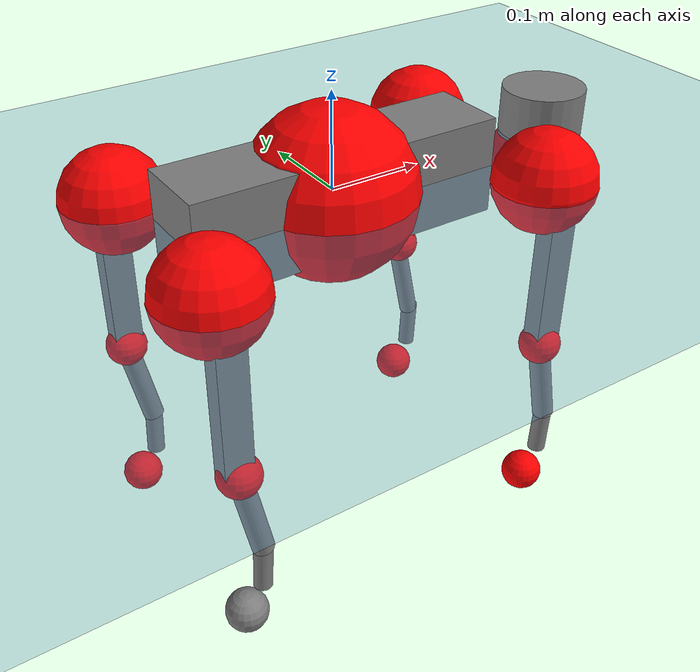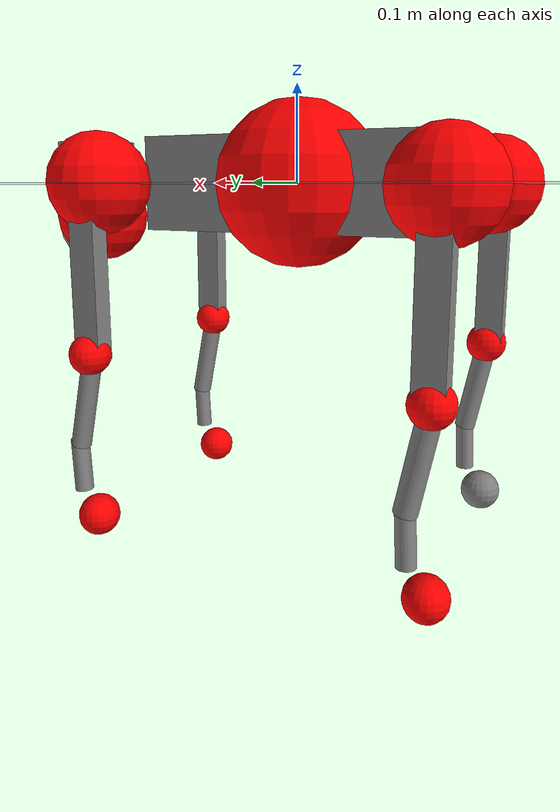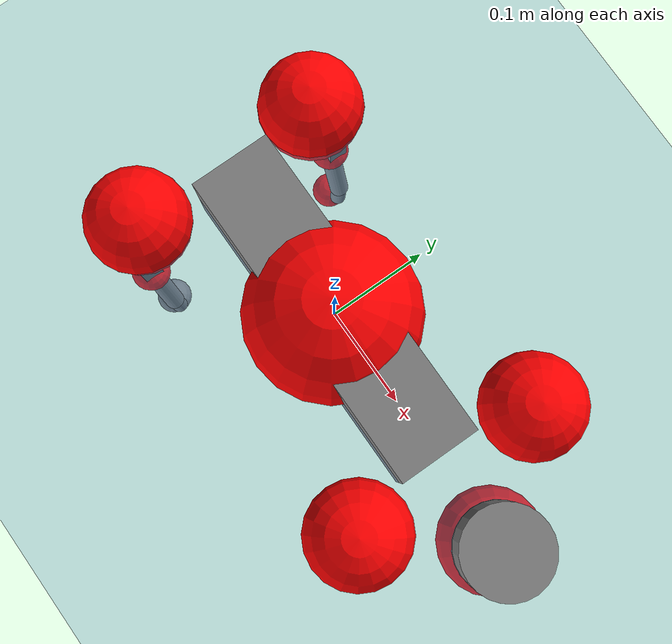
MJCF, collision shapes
<mujoco model="go2">
  <compiler angle="radian" assetdir="assets" balanceinertia="true" inertiafromgeom="false"/>

  <option timestep="0.005" density="1.2" viscosity="2e-05"/>

  <size nkey="1"/>

  <visual>
    <quality shadowsize="8192"/>
    <map shadowclip="0.5"/>
  </visual>

  <default>
    <default class="/">
      <geom contype="0" conaffinity="0" group="1" solref="-1000 -80"/>
      <site size="0.01 0.005 0.005" group="5"/>
      <general forcelimited="true" biastype="affine" gainprm="20" biasprm="0 -20 -0.5"/>
      <default class="go2">
        <joint armature="0.01" damping="0.01" frictionloss="0.2"/>
        <geom condim="1" margin="0.001"/>
        <default class="visual">
          <geom type="mesh" group="2"/>
        </default>
        <default class="collision">
          <geom group="3"/>
          <default class="foot">
            <geom size="0.022 0 0" condim="6" priority="1" friction="0.8 0.02 0.01" solimp="0.015 1 0.022"/>
          </default>
        </default>
        <default class="reward_collision_sphere">
          <geom group="5" rgba="1 0 0 1"/>
        </default>
      </default>
    </default>
  </default>

  <asset>
    <texture type="skybox" colorspace="auto" name="//unnamed_texture_0" builtin="gradient" rgb1="0.95 0.95 0.95" rgb2="0.95 0.95 0.95" width="100" height="600"/>
    <texture type="2d" colorspace="auto" name="texplane" builtin="checker" rgb1="0.345 0.575 0.748" rgb2="0.345 0.575 0.748" markrgb="1 1 1" width="512" height="512"/>
    <material name="MatPlane" class="/" texture="texplane" texuniform="true" texrepeat="2 2" specular="0.9"/>
    <material name="metal" class="/" rgba="0.9 0.95 0.95 1"/>
    <material name="black" class="/" rgba="0 0 0 1"/>
    <material name="white" class="/"/>
    <material name="gray" class="/" rgba="0.671705 0.692426 0.77427 1"/>
    <mesh name="base_0" class="/" file="base_0.obj"/>
    <mesh name="base_1" class="/" file="base_1.obj"/>
    <mesh name="base_2" class="/" file="base_2.obj"/>
    <mesh name="base_3" class="/" file="base_3.obj"/>
    <mesh name="base_4" class="/" file="base_4.obj"/>
    <mesh name="hip_0" class="/" file="hip_0.obj"/>
    <mesh name="hip_1" class="/" file="hip_1.obj"/>
    <mesh name="thigh_0" class="/" file="thigh_0.obj"/>
    <mesh name="thigh_1" class="/" file="thigh_1.obj"/>
    <mesh name="thigh_mirror_0" class="/" file="thigh_mirror_0.obj"/>
    <mesh name="thigh_mirror_1" class="/" file="thigh_mirror_1.obj"/>
    <mesh name="calf_0" class="/" file="calf_0.obj"/>
    <mesh name="calf_1" class="/" file="calf_1.obj"/>
    <mesh name="calf_mirror_0" class="/" file="calf_mirror_0.obj"/>
    <mesh name="calf_mirror_1" class="/" file="calf_mirror_1.obj"/>
    <mesh name="foot" class="/" file="foot.obj"/>
  </asset>

  <worldbody>
    <geom name="floor" class="/" size="100 100 0.125" type="plane" group="0" material="MatPlane"/>
    <light name="toplight_shadow" class="/" pos="0 0 5" dir="0.0990148 0.0990148 -0.990148" type="directional" ambient="0.04 0.04 0.04" diffuse="0.55 0.55 0.55" specular="0.12 0.12 0.12"/>
    <light name="toplight_fill" class="/" pos="0 0 5" dir="0.0990148 0.0990148 -0.990148" type="directional" castshadow="false" ambient="0.04 0.04 0.04" diffuse="0.3 0.3 0.3" specular="0.08 0.08 0.08"/>
    <body name="trunk" childclass="go2" pos="-0.0019892 -0.000693392 -0.000629677" quat="1 0.000563246 -0.000349019 -0.000373138">
      <inertial pos="0.0188603 0.000588452 -0.00432905" quat="0.00710201 0.707292 -0.00563184 0.706863" mass="4.66233" diaginertia="0.0777227 0.0475382 0.0103031"/>
      <joint name="//unnamed_joint_0" type="free" armature="0" damping="0" frictionloss="0"/>
      <geom name="//unnamed_geom_1" class="visual" material="black" mesh="base_0"/>
      <geom name="//unnamed_geom_2" class="visual" material="black" mesh="base_1"/>
      <geom name="//unnamed_geom_3" class="visual" material="black" mesh="base_2"/>
      <geom name="//unnamed_geom_4" class="visual" material="white" mesh="base_3"/>
      <geom name="//unnamed_geom_5" class="visual" material="gray" mesh="base_4"/>
      <geom name="trunk_1" class="collision" size="0.165409 0.0411103 0.0501238" type="box"/>
      <geom name="trunk_2" class="collision" size="0.0439683 0.0395715" pos="0.266325 0 0.00838357" type="cylinder"/>
      <geom name="trunk_3" class="collision" size="0.0413302" pos="0.273801 0 -0.0503014"/>
      <geom name="//unnamed_geom_9" class="reward_collision_sphere" size="0.0879366"/>
      <geom name="//unnamed_geom_10" class="reward_collision_sphere" size="0.0527619" pos="0.261653 0 -0.0377261"/>
      <site name="imu" pos="-0.0189368 -0.0128172 0.0378725" size="0.00879366"/>
      <camera name="track" pos="0 -1.73053 0" quat="0.707107 0.707107 0 0" mode="trackcom"/>
      <camera name="ego_camera" pos="0.291556 0 0.0377261" quat="-0.5 -0.5 0.5 0.5"/>
      <body name="FL_hip" pos="0.179917 0.0417958 0.000500915" quat="0.999999 -0.000534224 -0.000854235 0.00108933">
        <inertial pos="-0.00569281 0.00201039 0.000896996" quat="0.499819 0.502774 0.507991 0.489228" mass="0.47599" diaginertia="0.00065124 0.000297601 0.000207309"/>
        <joint name="FL_hip_joint" pos="0 0 0" axis="0.999947 0.0102054 0.000990538" stiffness="0.000283089" range="-0.994199 1.05654" armature="0.00981414" damping="0" frictionloss="0.182784"/>
        <geom name="//unnamed_geom_11" class="visual" material="metal" mesh="hip_0"/>
        <geom name="//unnamed_geom_12" class="visual" material="gray" mesh="hip_1"/>
        <geom name="//unnamed_geom_13" class="collision" size="0.0404508 0.0175873" pos="0 0.0692213 0" quat="0.707107 0.707107 0 0" type="cylinder"/>
        <geom name="//unnamed_geom_14" class="reward_collision_sphere" size="0.0527619" pos="0 0.0605686 0"/>
        <body name="FL_thigh" pos="-0.0016299 0.0833862 0.00096561" quat="1 0.00014196 0.000109188 6.83129e-05">
          <inertial pos="-0.00401897 -0.0217964 -0.0299295" quat="0.831983 0.085322 -0.0201236 0.547832" mass="0.797429" diaginertia="0.0042165 0.00281723 0.000361512"/>
          <joint name="FL_thigh_joint" pos="0 0 0" axis="-0.000804989 1 3.14392e-05" stiffness="0.00317533" range="-1.57224 3.5419" armature="0.00850466" damping="0" frictionloss="0.175491"/>
          <geom name="//unnamed_geom_15" class="visual" material="metal" mesh="thigh_0"/>
          <geom name="//unnamed_geom_16" class="visual" material="gray" mesh="thigh_1"/>
          <geom name="//unnamed_geom_17" class="collision" size="0.0936524 0.0107722 0.0149492" pos="0 0 -0.089285" quat="0.707107 0 0.707107 0" type="box"/>
          <body name="FL_calf" pos="0.00241984 0.00246021 -0.176849" quat="1 -2.30687e-06 1.05994e-05 -4.98144e-06">
            <inertial pos="0.00682951 -0.00120748 -0.116434" quat="0.710481 0.00173558 -0.00461399 0.703699" mass="0.170416" diaginertia="0.00109132 0.000722538 2.21012e-05"/>
            <joint name="FL_calf_joint" pos="0 0 0" axis="-0.00535868 0.999979 -0.00351217" range="-2.6914 -0.889041" armature="0.00860344" damping="0" frictionloss="0.180158"/>
            <geom name="//unnamed_geom_18" class="visual" material="gray" mesh="calf_0"/>
            <geom name="//unnamed_geom_19" class="visual" material="black" mesh="calf_1"/>
            <geom name="FL_calf0" class="collision" size="0.0105524 0.0527619" pos="0.00747579 0 -0.0503014" quat="0.994493 0 -0.104807 0" type="cylinder"/>
            <geom name="//unnamed_geom_21" class="collision" size="0.00967302 0.0285794" pos="0.0186895 0 -0.124077" quat="0.999688 0 0.0249974 0" type="cylinder"/>
            <geom name="//unnamed_geom_22" class="visual" pos="0 0 -0.17857" quat="1 0 0 0" material="black" mesh="foot"/>
            <geom name="FL_foot" class="foot" size="0.0170092" pos="-0.00186895 0 -0.17857"/>
            <geom name="//unnamed_geom_24" class="reward_collision_sphere" size="0.0219841"/>
            <geom name="//unnamed_geom_25" class="reward_collision_sphere" size="0.0219841" pos="-0.00186895 0 -0.17857"/>
            <site name="FL_foot" class="foot" pos="-0.00186895 0 -0.17857" size="0.00879366"/>
          </body>
        </body>
      </body>
      <body name="FR_hip" pos="0.182174 -0.0388414 0.00295215" quat="1 -3.62138e-05 -0.000203438 0.000162754">
        <inertial pos="-0.00383261 -0.00333782 0.00027022" quat="0.49125 0.514098 0.503622 0.490654" mass="0.477735" diaginertia="0.000645086 0.000298555 0.000202975"/>
        <joint name="FR_hip_joint" pos="0 0 0" axis="0.999993 0.00143041 0.00340218" range="-1.00573 1.05513" armature="0.00880211" damping="0.0143219" frictionloss="0.170345"/>
        <geom name="//unnamed_geom_26" class="visual" pos="0 2.34419e-10 1.00547e-08" quat="4.63268e-05 1 0 0" material="metal" mesh="hip_0"/>
        <geom name="//unnamed_geom_27" class="visual" pos="0 3.80021e-10 -2.48691e-08" quat="4.63268e-05 1 0 0" material="gray" mesh="hip_1"/>
        <geom name="//unnamed_geom_28" class="collision" size="0.0404508 0.0175873" pos="0 -0.0692213 0" quat="0.707107 0.707107 0 0" type="cylinder"/>
        <geom name="//unnamed_geom_29" class="reward_collision_sphere" size="0.0527619" pos="0 -0.0605686 0"/>
        <body name="FR_thigh" pos="0.00110813 -0.0822087 -0.00165297" quat="1 -0.000286928 -0.000283108 0.000102364">
          <inertial pos="-0.00333953 0.019301 -0.0300393" quat="0.545828 -0.013787 0.0934712 0.832553" mass="0.801735" diaginertia="0.00434039 0.00293293 0.000376781"/>
          <joint name="FR_thigh_joint" pos="0 0 0" axis="5.60629e-05 -0.999996 -0.00272497" stiffness="0.00289834" range="-3.54467 1.61698" armature="0.00782491" damping="0.0121808" frictionloss="0.166538"/>
          <geom name="//unnamed_geom_30" class="visual" material="metal" mesh="thigh_mirror_0"/>
          <geom name="//unnamed_geom_31" class="visual" material="gray" mesh="thigh_mirror_1"/>
          <geom name="//unnamed_geom_32" class="collision" size="0.0936524 0.0107722 0.0149492" pos="0 0 -0.089285" quat="0.707107 0 0.707107 0" type="box"/>
          <body name="FR_calf" pos="-0.000672294 -6.13263e-05 -0.178638" quat="1 9.08958e-06 -6.96302e-05 -2.97792e-05">
            <inertial pos="0.00482548 0.00101796 -0.116195" quat="0.705851 -0.00501787 -0.00144666 0.708341" mass="0.154446" diaginertia="0.00102747 0.00070997 2.06034e-05"/>
            <joint name="FR_calf_joint" pos="0 0 0" axis="-0.000959347 -0.999992 0.00396728" stiffness="0.00219233" range="0.841708 2.70842" armature="0.00977116" damping="0.0149155" frictionloss="0.174832"/>
            <geom name="//unnamed_geom_33" class="visual" material="gray" mesh="calf_mirror_0"/>
            <geom name="//unnamed_geom_34" class="visual" material="black" mesh="calf_mirror_1"/>
            <geom name="FR_calf0" class="collision" size="0.0114318 0.0527619" pos="0.00934474 0 -0.0503014" quat="0.995004 0 -0.0998334 0" type="cylinder"/>
            <geom name="//unnamed_geom_36" class="collision" size="0.00967302 0.0285794" pos="0.0186895 0 -0.124077" quat="0.999688 0 0.0249974 0" type="cylinder"/>
            <geom name="//unnamed_geom_37" class="visual" pos="0 0 -0.17857" quat="1 0 0 0" material="black" mesh="foot"/>
            <geom name="FR_foot" class="foot" size="0.0210352" pos="-0.00186895 0 -0.17857"/>
            <geom name="//unnamed_geom_39" class="reward_collision_sphere" size="0.0219841"/>
            <geom name="//unnamed_geom_40" class="reward_collision_sphere" size="0.0219841" pos="-0.00186895 0 -0.17857"/>
            <site name="FR_foot" class="foot" pos="-0.00186895 0 -0.17857" size="0.00879366"/>
          </body>
        </body>
      </body>
      <body name="RL_hip" pos="-0.179507 0.0393626 -0.00173298" quat="1 0.000176642 -0.000144819 -0.000133985">
        <inertial pos="0.00496697 0.00238895 -0.00229484" quat="0.503197 0.499744 0.496665 0.500373" mass="0.479226" diaginertia="0.000654094 0.00028432 0.000200205"/>
        <joint name="RL_hip_joint" pos="0 0 0" axis="-0.999754 0.0141099 0.017113" range="-0.994709 1.10008" armature="0.00881525" damping="0" frictionloss="0.199459"/>
        <geom name="//unnamed_geom_41" class="visual" pos="-8.37327e-10 0 -1.64135e-07" quat="4.63268e-05 0 1 0" material="metal" mesh="hip_0"/>
        <geom name="//unnamed_geom_42" class="visual" pos="-1.35741e-09 0 -1.45565e-07" quat="4.63268e-05 0 1 0" material="gray" mesh="hip_1"/>
        <geom name="//unnamed_geom_43" class="collision" size="0.0404508 0.0175873" pos="0 0.0692213 0" quat="0.707107 0.707107 0 0" type="cylinder"/>
        <geom name="//unnamed_geom_44" class="reward_collision_sphere" size="0.0527619" pos="0 0.0605686 0"/>
        <body name="RL_thigh" pos="0.000591852 0.0832021 -0.000344556" quat="1 -3.15636e-05 2.11597e-05 -3.31245e-06">
          <inertial pos="-0.00611386 -0.0194859 -0.0300611" quat="0.828935 0.0972144 -0.0246966 0.550279" mass="0.792266" diaginertia="0.0040929 0.00284956 0.00035139"/>
          <joint name="RL_thigh_joint" pos="0 0 0" axis="-0.00452581 0.999858 -0.0162596" stiffness="0.00317511" range="-0.576321 4.56033" armature="0.00862667" damping="0.00155077" frictionloss="0.174433"/>
          <geom name="//unnamed_geom_45" class="visual" material="metal" mesh="thigh_0"/>
          <geom name="//unnamed_geom_46" class="visual" material="gray" mesh="thigh_1"/>
          <geom name="//unnamed_geom_47" class="collision" size="0.0936524 0.0107722 0.0149492" pos="0 0 -0.089285" quat="0.707107 0 0.707107 0" type="box"/>
          <body name="RL_calf" pos="-0.00106558 -0.00110791 -0.181256" quat="1 6.80918e-05 -2.12105e-05 7.40612e-05">
            <inertial pos="0.00681169 -0.0018013 -0.116859" quat="0.714899 -0.00882212 -0.00393916 0.699161" mass="0.15901" diaginertia="0.00105988 0.000705208 2.20731e-05"/>
            <joint name="RL_calf_joint" pos="0 0 0" axis="-0.000112662 0.999964 0.00843682" range="-2.73853 -0.836187" armature="0.00868602" damping="0.000746188" frictionloss="0.186551"/>
            <geom name="//unnamed_geom_48" class="visual" material="gray" mesh="calf_0"/>
            <geom name="//unnamed_geom_49" class="visual" material="black" mesh="calf_1"/>
            <geom name="RL_calf0" class="collision" size="0.0114318 0.0527619" pos="0.00934474 0 -0.0503014" quat="0.995004 0 -0.0998334 0" type="cylinder"/>
            <geom name="//unnamed_geom_51" class="collision" size="0.00967302 0.0285794" pos="0.0186895 0 -0.124077" quat="0.999688 0 0.0249974 0" type="cylinder"/>
            <geom name="//unnamed_geom_52" class="visual" pos="0 0 -0.17857" quat="1 0 0 0" material="black" mesh="foot"/>
            <geom name="RL_foot" class="foot" size="0.0179898" pos="-0.00186895 0 -0.17857"/>
            <geom name="//unnamed_geom_54" class="reward_collision_sphere" size="0.0219841"/>
            <geom name="//unnamed_geom_55" class="reward_collision_sphere" size="0.0219841" pos="-0.00186895 0 -0.17857"/>
            <site name="RL_foot" class="foot" pos="-0.00186895 0 -0.17857" size="0.00879366"/>
          </body>
        </body>
      </body>
      <body name="RR_hip" pos="-0.18062 -0.0407155 -0.000215809" quat="1 -3.02298e-06 5.90437e-05 -1.8619e-05">
        <inertial pos="0.00537381 0.00109425 -0.0022215" quat="0.499354 0.497445 0.497986 0.505177" mass="0.446373" diaginertia="0.000615973 0.000283047 0.000192382"/>
        <joint name="RR_hip_joint" pos="0 0 0" axis="-0.999996 0.00225749 -0.00178792" range="-1.05067 0.999028" armature="0.00841394" damping="0" frictionloss="0.171388"/>
        <geom name="//unnamed_geom_56" class="visual" pos="8.3493e-10 2.34419e-10 -1.7419e-07" quat="2.14617e-09 4.63268e-05 4.63268e-05 -1" material="metal" mesh="hip_0"/>
        <geom name="//unnamed_geom_57" class="visual" pos="1.36333e-09 3.80021e-10 -1.20695e-07" quat="2.14617e-09 4.63268e-05 4.63268e-05 -1" material="gray" mesh="hip_1"/>
        <geom name="//unnamed_geom_58" class="collision" size="0.0404508 0.0175873" pos="0 -0.0692213 0" quat="0.707107 0.707107 0 0" type="cylinder"/>
        <geom name="//unnamed_geom_59" class="reward_collision_sphere" size="0.0527619" pos="0 -0.0605686 0"/>
        <body name="RR_thigh" pos="-0.00111174 -0.0836276 0.00187532" quat="1 -0.000131353 0.00036705 -9.67699e-06">
          <inertial pos="-0.00477602 0.0215112 -0.0274012" quat="0.552197 -0.0196536 0.0852962 0.829106" mass="0.735707" diaginertia="0.00412101 0.00274949 0.00036339"/>
          <joint name="RR_thigh_joint" pos="0 0 0" axis="0.00372786 -0.999985 0.00397432" stiffness="0.0075637" range="-4.59129 0.577346" armature="0.00911819" damping="0.0123412" frictionloss="0.153834"/>
          <geom name="//unnamed_geom_60" class="visual" material="metal" mesh="thigh_mirror_0"/>
          <geom name="//unnamed_geom_61" class="visual" material="gray" mesh="thigh_mirror_1"/>
          <geom name="//unnamed_geom_62" class="collision" size="0.0936524 0.0107722 0.0149492" pos="0 0 -0.089285" quat="0.707107 0 0.707107 0" type="box"/>
          <body name="RR_calf" pos="0.00311705 -0.00133943 -0.179546" quat="1 -8.43077e-05 0.000137506 -0.000474463">
            <inertial pos="0.00510671 0.000721214 -0.118683" quat="0.70398 -0.00429268 0.00538308 0.710186" mass="0.156161" diaginertia="0.00105259 0.000694092 2.16231e-05"/>
            <joint name="RR_calf_joint" pos="0 0 0" axis="-0.00059795 -1 0.000185141" range="0.827757 2.74796" armature="0.00868071" damping="0.00413092" frictionloss="0.172736"/>
            <geom name="//unnamed_geom_63" class="visual" material="gray" mesh="calf_mirror_0"/>
            <geom name="//unnamed_geom_64" class="visual" material="black" mesh="calf_mirror_1"/>
            <geom name="RR_calf0" class="collision" size="0.0114318 0.0527619" pos="0.00934474 0 -0.0503014" quat="0.995004 0 -0.0998334 0" type="cylinder"/>
            <geom name="//unnamed_geom_66" class="collision" size="0.00967302 0.0285794" pos="0.0186895 0 -0.124077" quat="0.999688 0 0.0249974 0" type="cylinder"/>
            <geom name="//unnamed_geom_67" class="visual" pos="0 0 -0.17857" quat="1 0 0 0" material="black" mesh="foot"/>
            <geom name="RR_foot" class="foot" size="0.0220458" pos="-0.00186895 0 -0.17857"/>
            <geom name="//unnamed_geom_69" class="reward_collision_sphere" size="0.0219841"/>
            <geom name="//unnamed_geom_70" class="reward_collision_sphere" size="0.0219841" pos="-0.00186895 0 -0.17857"/>
            <site name="RR_foot" class="foot" pos="-0.00186895 0 -0.17857" size="0.00879366"/>
          </body>
        </body>
      </body>
    </body>
  </worldbody>

  <contact>
    <pair class="/" geom1="floor" geom2="FL_foot" name="//unnamed_contact_0"/>
    <pair class="/" geom1="floor" geom2="FR_foot" name="//unnamed_contact_1"/>
    <pair class="/" geom1="floor" geom2="RL_foot" name="//unnamed_contact_2"/>
    <pair class="/" geom1="floor" geom2="RR_foot" name="//unnamed_contact_3"/>
  </contact>

  <actuator>
    <general name="FL_hip" class="/" joint="FL_hip_joint" forcerange="-20.1837 20.1837" gainprm="17.9935" biasprm="0 -17.9935 -0.46964"/>
    <general name="FL_thigh" class="/" joint="FL_thigh_joint" forcerange="-22.885 22.885" gainprm="17.9935" biasprm="0 -17.9935 -0.46964"/>
    <general name="FL_calf" class="/" joint="FL_calf_joint" forcerange="-35.8684 35.8684" gainprm="17.9935" biasprm="0 -17.9935 -0.46964"/>
    <general name="FR_hip" class="/" joint="FR_hip_joint" forcerange="-20.7176 20.7176" gainprm="17.9935" biasprm="0 -17.9935 -0.46964"/>
    <general name="FR_thigh" class="/" joint="FR_thigh_joint" forcerange="-21.7495 21.7495" gainprm="17.9935" biasprm="0 -17.9935 -0.46964"/>
    <general name="FR_calf" class="/" joint="FR_calf_joint" forcerange="-42.9251 42.9251" gainprm="17.9935" biasprm="0 -17.9935 -0.46964"/>
    <general name="RL_hip" class="/" joint="RL_hip_joint" forcerange="-22.8742 22.8742" gainprm="17.9935" biasprm="0 -17.9935 -0.46964"/>
    <general name="RL_thigh" class="/" joint="RL_thigh_joint" forcerange="-21.318 21.318" gainprm="17.9935" biasprm="0 -17.9935 -0.46964"/>
    <general name="RL_calf" class="/" joint="RL_calf_joint" forcerange="-40.6926 40.6926" gainprm="17.9935" biasprm="0 -17.9935 -0.46964"/>
    <general name="RR_hip" class="/" joint="RR_hip_joint" forcerange="-20.4281 20.4281" gainprm="17.9935" biasprm="0 -17.9935 -0.46964"/>
    <general name="RR_thigh" class="/" joint="RR_thigh_joint" forcerange="-18.8278 18.8278" gainprm="17.9935" biasprm="0 -17.9935 -0.46964"/>
    <general name="RR_calf" class="/" joint="RR_calf_joint" forcerange="-36.3374 36.3374" gainprm="17.9935" biasprm="0 -17.9935 -0.46964"/>
  </actuator>

  <sensor>
    <gyro site="imu" name="imu_angular_velocity"/>
    <velocimeter site="imu" name="imu_linear_velocity"/>
    <framelinvel objtype="site" objname="FL_foot" name="FL_foot_global_linear_velocity"/>
    <framelinvel objtype="site" objname="FR_foot" name="FR_foot_global_linear_velocity"/>
    <framelinvel objtype="site" objname="RL_foot" name="RL_foot_global_linear_velocity"/>
    <framelinvel objtype="site" objname="RR_foot" name="RR_foot_global_linear_velocity"/>
  </sensor>

  <keyframe>
    <key name="home" qpos="0 0 0.325 1 0 0 0 0.1 0.8 -1.5 -0.1 -0.8 1.5 -0.1 0.8 -1.5 0.1 -0.8 1.5"/>
  </keyframe>
</mujoco>
